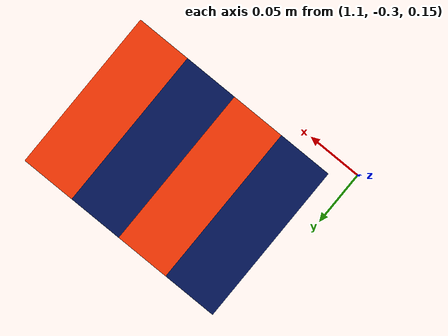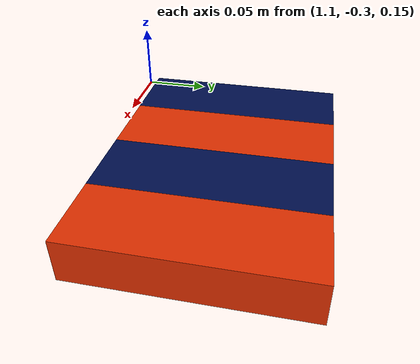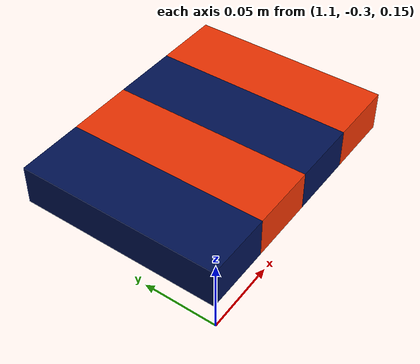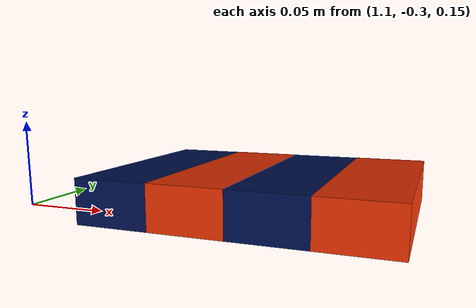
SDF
<?xml version="1.0"?>
<sdf version="1.10">
  <model name="all_cargo">
    <model name='group_1'>

      <model name='cargo_1_1'>
        <pose>1.145 -0.210 0.150 0 0 1.57</pose>
        <link name='grip_link_1_1'>
          <inertial>
            <inertia>
              <ixx>2.98e-4</ixx>
              <ixy>0</ixy>
              <ixz>0</ixz>
              <iyy>4.67e-3</iyy>
              <iyz>0</iyz>
              <izz>4.95e-3</izz>
            </inertia>
            <mass>0.35</mass>
            <pose>0 0 0 0 0 0</pose>
          </inertial>
          <collision name='box_collision_1_1'>
            <geometry>
              <box>
                <size>0.15 0.05 0.03</size>
              </box>
            </geometry>
            <surface>
              <friction>
                <ode/>
              </friction>
              <bounce/>
              <contact/>
            </surface>
          </collision>
          <visual name='box_visual_1_1'>
            <geometry>
              <box>
                <size>0.15 0.05 0.03</size>
              </box>
            </geometry>
            <material>
              <ambient> 0.0 0.068 0.325 1</ambient>
              <diffuse> 0.0 0.068 0.325 1</diffuse>
              <specular>0 0 0 1</specular>
              <emissive>0 0.05 0.0  1</emissive>
            </material>
            <gamma_correction>false</gamma_correction>
          </visual>
          <pose>0 0 0 0 0 0</pose>
          <enable_wind>false</enable_wind>
        </link>
        <static>false</static>
      </model>
      <model name='cargo_1_2'>
        <pose>1.195 -0.210 0.150 0 0 1.57</pose>
        <link name='grip_link_1_2'>
          <inertial>
            <inertia>
              <ixx>2.98e-4</ixx>
              <ixy>0</ixy>
              <ixz>0</ixz>
              <iyy>4.67e-3</iyy>
              <iyz>0</iyz>
              <izz>4.95e-3</izz>
            </inertia>
            <mass>0.35</mass>
            <pose>0 0 0 0 0 0</pose>
          </inertial>
          <collision name='box_collision_1_2'>
            <geometry>
              <box>
                <size>0.15 0.05 0.03</size>
              </box>
            </geometry>
            <surface>
              <friction>
                <ode/>
              </friction>
              <bounce/>
              <contact/>
            </surface>
          </collision>
          <visual name='box_visual_1_2'>
            <geometry>
              <box>
                <size>0.15 0.05 0.03</size>
              </box>
            </geometry>
            <material>
              <ambient> 0.93 0.2 0.007 1</ambient>
              <diffuse> 0.93 0.2 0.007 1</diffuse>
              <specular>0 0 0 1</specular>
              <emissive>0.2 0.05 0.0  1</emissive>
            </material>
            <gamma_correction>false</gamma_correction>
          </visual>
          <pose>0 0 0 0 0 0</pose>
          <enable_wind>false</enable_wind>
        </link>
        <static>false</static>
      </model>
      <model name='cargo_1_3'>
        <pose>1.245 -0.210 0.150 0 0 1.57</pose>
        <link name='grip_link_1_3'>
          <inertial>
            <inertia>
              <ixx>2.98e-4</ixx>
              <ixy>0</ixy>
              <ixz>0</ixz>
              <iyy>4.67e-3</iyy>
              <iyz>0</iyz>
              <izz>4.95e-3</izz>
            </inertia>
            <mass>0.35</mass>
            <pose>0 0 0 0 0 0</pose>
          </inertial>
          <collision name='box_collision_1_3'>
            <geometry>
              <box>
                <size>0.15 0.05 0.03</size>
              </box>
            </geometry>
            <surface>
              <friction>
                <ode/>
              </friction>
              <bounce/>
              <contact/>
            </surface>
          </collision>
          <visual name='box_visual_1_3'>
            <geometry>
              <box>
                <size>0.15 0.05 0.03</size>
              </box>
            </geometry>
            <material>
              <ambient> 0.0 0.068 0.325 1</ambient>
              <diffuse> 0.0 0.068 0.325 1</diffuse>
              <specular>0 0 0 1</specular>
              <emissive>0 0.05 0.0  1</emissive>
            </material>
            <gamma_correction>false</gamma_correction>
          </visual>
          <pose>0 0 0 0 0 0</pose>
          <enable_wind>false</enable_wind>
        </link>
        <static>false</static>
      </model>
      <model name='cargo_1_4'>
        <pose>1.295 -0.210 0.150 0 0 1.57</pose>
        <link name='grip_link_1_4'>
          <inertial>
            <inertia>
              <ixx>2.98e-4</ixx>
              <ixy>0</ixy>
              <ixz>0</ixz>
              <iyy>4.67e-3</iyy>
              <iyz>0</iyz>
              <izz>4.95e-3</izz>
            </inertia>
            <mass>0.35</mass>
            <pose>0 0 0 0 0 0</pose>
          </inertial>
          <collision name='box_collision_1_4'>
            <geometry>
              <box>
                <size>0.15 0.05 0.03</size>
              </box>
            </geometry>
            <surface>
              <friction>
                <ode/>
              </friction>
              <bounce/>
              <contact/>
            </surface>
          </collision>
          <visual name='box_visual_1_4'>
            <geometry>
              <box>
                <size>0.15 0.05 0.03</size>
              </box>
            </geometry>
            <material>
              <ambient> 0.93 0.2 0.007 1</ambient>
              <diffuse> 0.93 0.2 0.007 1</diffuse>
              <specular>0 0 0 1</specular>
              <emissive>0.2 0.05 0.0  1</emissive>
            </material>
            <gamma_correction>false</gamma_correction>
          </visual>
          <pose>0 0 0 0 0 0</pose>
          <enable_wind>false</enable_wind>
        </link>
        <static>false</static>
      </model>
    </model>
  </model>
</sdf>
